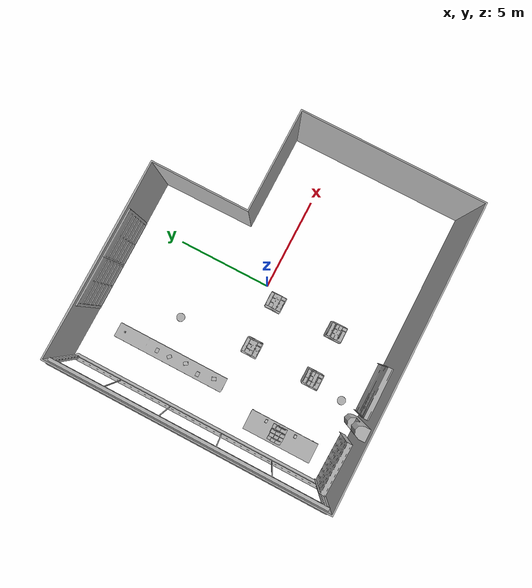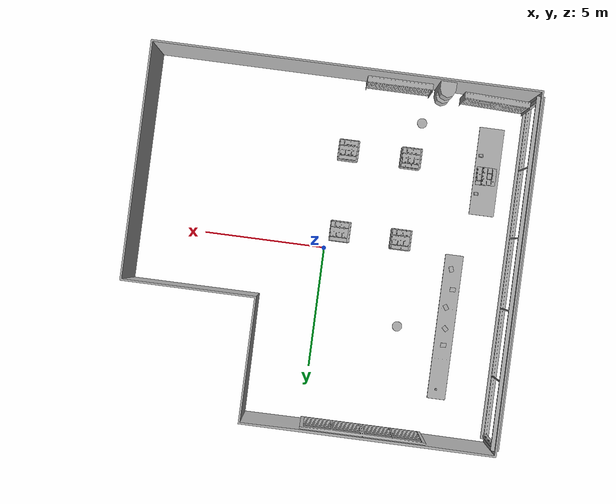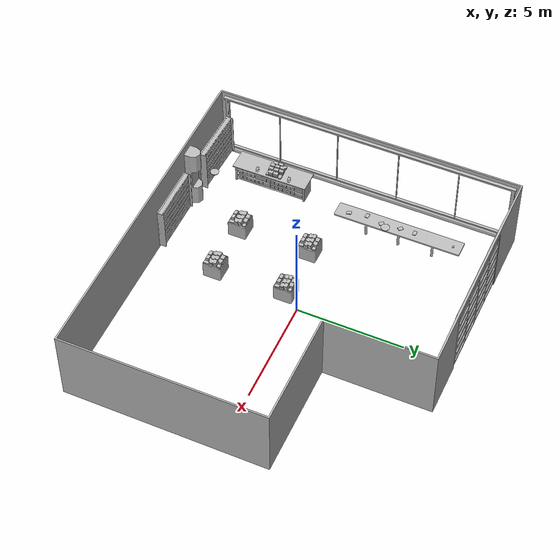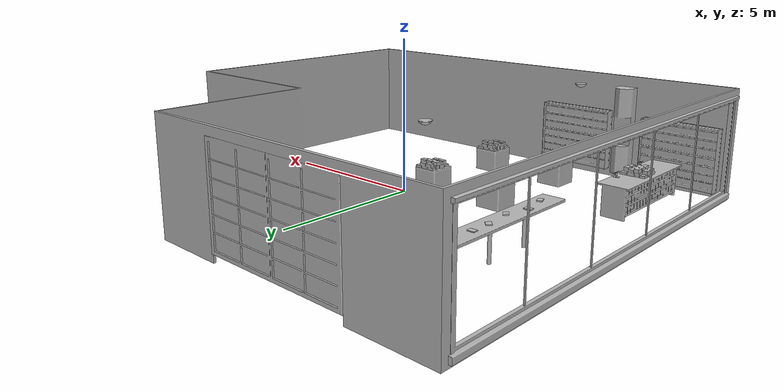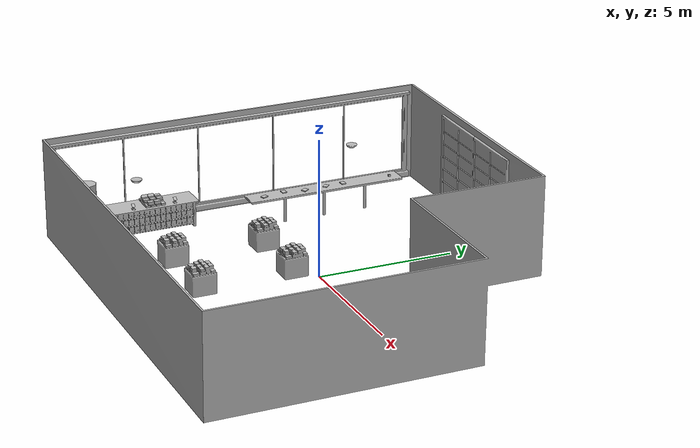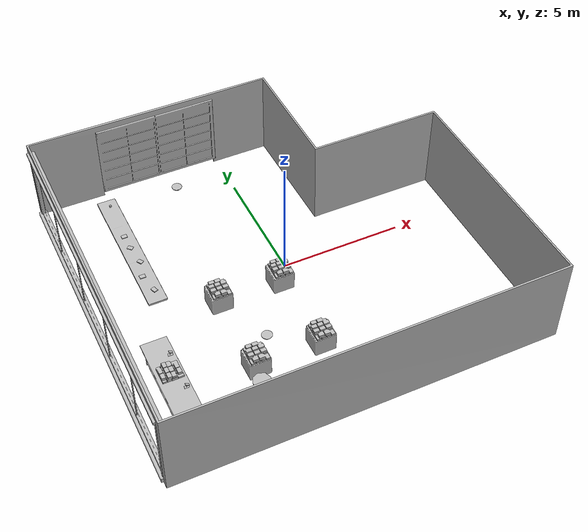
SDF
<sdf version="1.7">
 <world name="default">
  <model name="BookE_01_002">
   <pose>-5.414 3.33067 0.934015 -1e-06 -1e-06 -1.54109</pose>
   <frame name="aws_robomaker_retail_BookE_01::__model__" attached_to="aws_robomaker_retail_BookE_01::link">
    <pose relative_to="__model__">0 0 0 0 -0 0</pose>
   </frame>
   <link name="aws_robomaker_retail_BookE_01::link">
    <inertial>
     <mass>1</mass>
     <inertia><ixy>0</ixy><ixz>0</ixz><iyz>0</iyz><ixx>0.0666</ixx><iyy>0.0346</iyy><izz>0.0986</izz></inertia>
    </inertial>
    <collision name="collision">
     <geometry>
      <mesh>
       <uri>model://aws_robomaker_retail_BookE_01/meshes/aws_BookE_01_collision.DAE</uri>
       <scale>1 1 1</scale>
      </mesh>
     </geometry>
    </collision>
    <visual name="visual">
     <geometry>
      <mesh><uri>model://aws_robomaker_retail_BookE_01/meshes/aws_BookE_01_visual.DAE</uri></mesh>
     </geometry>
    </visual>
    <pose relative_to="aws_robomaker_retail_BookE_01::__model__">0 0 0 0 -0 0</pose>
   </link>
   <static>1</static>
  </model>
  <model name="BookE_01_008">
   <pose>-5.31512 1.77195 0.955242 3.14124 -0.072268 -2.52691</pose>
   <frame name="aws_robomaker_retail_BookE_01::__model__" attached_to="aws_robomaker_retail_BookE_01::link">
    <pose relative_to="__model__">0 0 0 0 -0 0</pose>
   </frame>
   <link name="aws_robomaker_retail_BookE_01::link">
    <inertial>
     <mass>1</mass>
     <inertia><ixy>0</ixy><ixz>0</ixz><iyz>0</iyz><ixx>0.0666</ixx><iyy>0.0346</iyy><izz>0.0986</izz></inertia>
    </inertial>
    <collision name="collision">
     <geometry>
      <mesh>
       <uri>model://aws_robomaker_retail_BookE_01/meshes/aws_BookE_01_collision.DAE</uri>
       <scale>1 1 1</scale>
      </mesh>
     </geometry>
    </collision>
    <visual name="visual">
     <geometry>
      <mesh><uri>model://aws_robomaker_retail_BookE_01/meshes/aws_BookE_01_visual.DAE</uri></mesh>
     </geometry>
    </visual>
    <pose relative_to="aws_robomaker_retail_BookE_01::__model__">0 0 0 0 -0 0</pose>
   </link>
   <static>1</static>
  </model>
  <model name="BookE_01_010">
   <pose>-5.50342 1.01206 0.941463 0 0 -1.56844</pose>
   <frame name="aws_robomaker_retail_BookE_01::__model__" attached_to="aws_robomaker_retail_BookE_01::link">
    <pose relative_to="__model__">0 0 0 0 -0 0</pose>
   </frame>
   <link name="aws_robomaker_retail_BookE_01::link">
    <inertial>
     <mass>1</mass>
     <inertia><ixy>0</ixy><ixz>0</ixz><iyz>0</iyz><ixx>0.0666</ixx><iyy>0.0346</iyy><izz>0.0986</izz></inertia>
    </inertial>
    <collision name="collision">
     <geometry>
      <mesh>
       <uri>model://aws_robomaker_retail_BookE_01/meshes/aws_BookE_01_collision.DAE</uri>
       <scale>1 1 1</scale>
      </mesh>
     </geometry>
    </collision>
    <visual name="visual">
     <geometry>
      <mesh><uri>model://aws_robomaker_retail_BookE_01/meshes/aws_BookE_01_visual.DAE</uri></mesh>
     </geometry>
    </visual>
    <pose relative_to="aws_robomaker_retail_BookE_01::__model__">0 0 0 0 -0 0</pose>
   </link>
   <static>1</static>
  </model>
  <model name="BookE_01_012">
   <pose>-5.33358 0.186186 0.949316 -1e-06 -0.004549 -2.79848</pose>
   <frame name="aws_robomaker_retail_BookE_01::__model__" attached_to="aws_robomaker_retail_BookE_01::link">
    <pose relative_to="__model__">0 0 0 0 -0 0</pose>
   </frame>
   <link name="aws_robomaker_retail_BookE_01::link">
    <inertial>
     <mass>1</mass>
     <inertia><ixy>0</ixy><ixz>0</ixz><iyz>0</iyz><ixx>0.0666</ixx><iyy>0.0346</iyy><izz>0.0986</izz></inertia>
    </inertial>
    <collision name="collision">
     <geometry>
      <mesh>
       <uri>model://aws_robomaker_retail_BookE_01/meshes/aws_BookE_01_collision.DAE</uri>
       <scale>1 1 1</scale>
      </mesh>
     </geometry>
    </collision>
    <visual name="visual">
     <geometry>
      <mesh><uri>model://aws_robomaker_retail_BookE_01/meshes/aws_BookE_01_visual.DAE</uri></mesh>
     </geometry>
    </visual>
    <pose relative_to="aws_robomaker_retail_BookE_01::__model__">0 0 0 0 -0 0</pose>
   </link>
   <static>1</static>
  </model>
  <model name="BookE_01_013">
   <pose>-5.40391 2.65088 0.931119 0.021204 -1e-06 -2.35575</pose>
   <frame name="aws_robomaker_retail_BookE_01::__model__" attached_to="aws_robomaker_retail_BookE_01::link">
    <pose relative_to="__model__">0 0 0 0 -0 0</pose>
   </frame>
   <link name="aws_robomaker_retail_BookE_01::link">
    <inertial>
     <mass>1</mass>
     <inertia><ixy>0</ixy><ixz>0</ixz><iyz>0</iyz><ixx>0.0666</ixx><iyy>0.0346</iyy><izz>0.0986</izz></inertia>
    </inertial>
    <collision name="collision">
     <geometry>
      <mesh>
       <uri>model://aws_robomaker_retail_BookE_01/meshes/aws_BookE_01_collision.DAE</uri>
       <scale>1 1 1</scale>
      </mesh>
     </geometry>
    </collision>
    <visual name="visual">
     <geometry>
      <mesh><uri>model://aws_robomaker_retail_BookE_01/meshes/aws_BookE_01_visual.DAE</uri></mesh>
     </geometry>
    </visual>
    <pose relative_to="aws_robomaker_retail_BookE_01::__model__">0 0 0 0 -0 0</pose>
   </link>
   <static>1</static>
  </model>
  <model name="BookD_01_002">
   <pose>-3.10814 -0.752307 0.804482 0 0 -4e-06</pose>
   <frame name="aws_robomaker_retail_BookD_01::__model__" attached_to="aws_robomaker_retail_BookD_01::link">
    <pose relative_to="__model__">0 0 0 0 -0 0</pose>
   </frame>
   <link name="aws_robomaker_retail_BookD_01::link">
    <inertial><mass>0.5</mass></inertial>
    <collision name="collision">
     <geometry>
      <mesh>
       <uri>model://aws_robomaker_retail_BookD_01/meshes/aws_BookD_01_collision.DAE</uri>
       <scale>1 1 1</scale>
      </mesh>
     </geometry>
    </collision>
    <visual name="visual">
     <geometry>
      <mesh><uri>model://aws_robomaker_retail_BookD_01/meshes/aws_BookD_01_visual.DAE</uri></mesh>
     </geometry>
    </visual>
    <pose relative_to="aws_robomaker_retail_BookD_01::__model__">0 0 0 0 -0 0</pose>
   </link>
   <static>1</static>
  </model>
  <model name="BookF_01_003">
   <pose>-3.09206 -4.15479 0.804485 4e-06 -0 0</pose>
   <frame name="aws_robomaker_retail_BookF_01::__model__" attached_to="aws_robomaker_retail_BookF_01::link">
    <pose relative_to="__model__">0 0 0 0 -0 0</pose>
   </frame>
   <link name="aws_robomaker_retail_BookF_01::link">
    <inertial>
     <mass>10</mass>
     <inertia>
      <ixx>0.583817</ixx>
      <ixy>0</ixy>
      <ixz>0</ixz>
      <iyy>0.502925</iyy>
      <iyz>0</iyz>
      <izz>0.99304</izz>
     </inertia>
    </inertial>
    <collision name="collision">
     <geometry>
      <mesh>
       <uri>model://aws_robomaker_retail_BookF_01/meshes/aws_BookF_01_collision.DAE</uri>
       <scale>1 1 1</scale>
      </mesh>
     </geometry>
    </collision>
    <visual name="visual">
     <geometry>
      <mesh><uri>model://aws_robomaker_retail_BookF_01/meshes/aws_BookF_01_visual.DAE</uri></mesh>
     </geometry>
    </visual>
    <pose relative_to="aws_robomaker_retail_BookF_01::__model__">0 0 0 0 -0 0</pose>
   </link>
   <static>1</static>
  </model>
  <model name="BookD_01_003">
   <pose>-6.23561 -3.78518 1.03816 8e-06 -0 1.58038</pose>
   <frame name="aws_robomaker_retail_BookD_01::__model__" attached_to="aws_robomaker_retail_BookD_01::link">
    <pose relative_to="__model__">0 0 0 0 -0 0</pose>
   </frame>
   <link name="aws_robomaker_retail_BookD_01::link">
    <inertial><mass>0.5</mass></inertial>
    <collision name="collision">
     <geometry>
      <mesh>
       <uri>model://aws_robomaker_retail_BookD_01/meshes/aws_BookD_01_collision.DAE</uri>
       <scale>1 1 1</scale>
      </mesh>
     </geometry>
    </collision>
    <visual name="visual">
     <geometry>
      <mesh><uri>model://aws_robomaker_retail_BookD_01/meshes/aws_BookD_01_visual.DAE</uri></mesh>
     </geometry>
    </visual>
    <pose relative_to="aws_robomaker_retail_BookD_01::__model__">0 0 0 0 -0 0</pose>
   </link>
   <static>1</static>
  </model>
  <model name="BookshelfB_01_001">
   <pose>-6.18968 -6.78565 -0.008942 0.003533 0.000121 -0.032073</pose>
   <frame name="aws_robomaker_retail_BookshelfB_01::__model__" attached_to="aws_robomaker_retail_BookshelfB_01::link">
    <pose relative_to="__model__">0 0 0 0 -0 0</pose>
   </frame>
   <link name="aws_robomaker_retail_BookshelfB_01::link">
    <inertial>
     <mass>50</mass>
     <inertia><ixx>19.8742</ixx><ixy>0</ixy><ixz>0</ixz><iyy>49.1263</iyy><iyz>0</iyz><izz>30.2231</izz></inertia>
    </inertial>
    <collision name="collision">
     <geometry>
      <mesh>
       <uri>model://aws_robomaker_retail_BookshelfB_01/meshes/aws_BookshelfB_01_collision.DAE</uri>
       <scale>1 1 1</scale>
      </mesh>
     </geometry>
    </collision>
    <visual name="visual">
     <geometry>
      <mesh><uri>model://aws_robomaker_retail_BookshelfB_01/meshes/aws_BookshelfB_01_visual.DAE</uri></mesh>
     </geometry>
    </visual>
    <pose relative_to="aws_robomaker_retail_BookshelfB_01::__model__">0 0 0 0 -0 0</pose>
   </link>
   <static>1</static>
  </model>
  <model name="BookshelfB_01_002">
   <pose>-2.20941 -6.97146 0.017074 -0.000128 -0.000252 0.000364</pose>
   <frame name="aws_robomaker_retail_BookshelfB_01::__model__" attached_to="aws_robomaker_retail_BookshelfB_01::link">
    <pose relative_to="__model__">0 0 0 0 -0 0</pose>
   </frame>
   <link name="aws_robomaker_retail_BookshelfB_01::link">
    <inertial>
     <mass>50</mass>
     <inertia><ixx>19.8742</ixx><ixy>0</ixy><ixz>0</ixz><iyy>49.1263</iyy><iyz>0</iyz><izz>30.2231</izz></inertia>
    </inertial>
    <collision name="collision">
     <geometry>
      <mesh>
       <uri>model://aws_robomaker_retail_BookshelfB_01/meshes/aws_BookshelfB_01_collision.DAE</uri>
       <scale>1 1 1</scale>
      </mesh>
     </geometry>
    </collision>
    <visual name="visual">
     <geometry>
      <mesh><uri>model://aws_robomaker_retail_BookshelfB_01/meshes/aws_BookshelfB_01_visual.DAE</uri></mesh>
     </geometry>
    </visual>
    <pose relative_to="aws_robomaker_retail_BookshelfB_01::__model__">0 0 0 0 -0 0</pose>
   </link>
   <static>1</static>
  </model>
  <model name="BookshelfC_01_003">
   <pose>-3.12493 -0.75822 0.045908 0 -0 0</pose>
   <frame name="aws_robomaker_retail_BookshelfC_01::__model__" attached_to="aws_robomaker_retail_BookshelfC_01::link">
    <pose relative_to="__model__">0 0 0 0 -0 0</pose>
   </frame>
   <link name="aws_robomaker_retail_BookshelfC_01::link">
    <inertial>
     <mass>50</mass>
     <inertia><ixx>5.5865</ixx><ixy>0</ixy><ixz>0</ixz><iyy>5.47324</iyy><iyz>0</iyz><izz>6.23277</izz></inertia>
    </inertial>
    <collision name="collision">
     <geometry>
      <mesh>
       <uri>model://aws_robomaker_retail_BookshelfC_01/meshes/aws_BookshelfC_01_collision.DAE</uri>
       <scale>1 1 1</scale>
      </mesh>
     </geometry>
    </collision>
    <visual name="visual">
     <geometry>
      <mesh><uri>model://aws_robomaker_retail_BookshelfC_01/meshes/aws_BookshelfC_01_visual.DAE</uri></mesh>
     </geometry>
    </visual>
    <pose relative_to="aws_robomaker_retail_BookshelfC_01::__model__">0 0 0 0 -0 0</pose>
   </link>
   <static>1</static>
  </model>
  <model name="BookshelfC_01_004">
   <pose>-3.10886 -4.16701 0.045908 0 -0 0</pose>
   <frame name="aws_robomaker_retail_BookshelfC_01::__model__" attached_to="aws_robomaker_retail_BookshelfC_01::link">
    <pose relative_to="__model__">0 0 0 0 -0 0</pose>
   </frame>
   <link name="aws_robomaker_retail_BookshelfC_01::link">
    <inertial>
     <mass>50</mass>
     <inertia><ixx>5.5865</ixx><ixy>0</ixy><ixz>0</ixz><iyy>5.47324</iyy><iyz>0</iyz><izz>6.23277</izz></inertia>
    </inertial>
    <collision name="collision">
     <geometry>
      <mesh>
       <uri>model://aws_robomaker_retail_BookshelfC_01/meshes/aws_BookshelfC_01_collision.DAE</uri>
       <scale>1 1 1</scale>
      </mesh>
     </geometry>
    </collision>
    <visual name="visual">
     <geometry>
      <mesh><uri>model://aws_robomaker_retail_BookshelfC_01/meshes/aws_BookshelfC_01_visual.DAE</uri></mesh>
     </geometry>
    </visual>
    <pose relative_to="aws_robomaker_retail_BookshelfC_01::__model__">0 0 0 0 -0 0</pose>
   </link>
   <static>1</static>
  </model>
  <model name="ColumnB_01_002">
   <pose>-4.07623 -6.86071 0.017511 0.001895 -0.000628 -0.003755</pose>
   <frame name="aws_robomaker_retail_ColumnB_01::__model__" attached_to="aws_robomaker_retail_ColumnB_01::link">
    <pose relative_to="__model__">0 0 0 0 -0 0</pose>
   </frame>
   <link name="aws_robomaker_retail_ColumnB_01::link">
    <inertial>
     <mass>50</mass>
     <inertia><ixx>44.5597</ixx><ixy>0</ixy><ixz>0</ixz><iyy>44.5597</iyy><iyz>0</iyz><izz>1.87942</izz></inertia>
    </inertial>
    <collision name="collision">
     <geometry>
      <mesh>
       <uri>model://aws_robomaker_retail_ColumnB_01/meshes/aws_ColumnB_01_collision.DAE</uri>
       <scale>1 1 1</scale>
      </mesh>
     </geometry>
    </collision>
    <visual name="visual">
     <geometry>
      <mesh><uri>model://aws_robomaker_retail_ColumnB_01/meshes/aws_ColumnB_01_visual.DAE</uri></mesh>
     </geometry>
    </visual>
    <pose relative_to="aws_robomaker_retail_ColumnB_01::__model__">0 0 0 0 -0 0</pose>
   </link>
   <static>1</static>
  </model>
  <model name="DeskB_01_002">
   <pose>-5.40071 2.58054 -0.181282 0 -0 0</pose>
   <frame name="aws_robomaker_retail_DeskB_01::__model__" attached_to="aws_robomaker_retail_DeskB_01::link">
    <pose relative_to="__model__">0 0 0 0 -0 0</pose>
   </frame>
   <link name="aws_robomaker_retail_DeskB_01::link">
    <inertial>
     <mass>50</mass>
     <inertia><ixx>154.884</ixx><ixy>0</ixy><ixz>0</ixz><iyy>7.48424</iyy><iyz>0</iyz><izz>152.099</izz></inertia>
    </inertial>
    <collision name="collision">
     <geometry>
      <mesh>
       <uri>model://aws_robomaker_retail_DeskB_01/meshes/aws_DeskB_01_collision.DAE</uri>
       <scale>1 1 1</scale>
      </mesh>
     </geometry>
    </collision>
    <visual name="visual">
     <geometry>
      <mesh><uri>model://aws_robomaker_retail_DeskB_01/meshes/aws_DeskB_01_visual.DAE</uri></mesh>
     </geometry>
    </visual>
    <pose relative_to="aws_robomaker_retail_DeskB_01::__model__">0 0 0 0 -0 0</pose>
   </link>
   <static>1</static>
  </model>
  <model name="DeskA_01_003">
   <pose>-6.25465 -3.9792 -0.004603 0.001948 0.001361 -1.56957</pose>
   <frame name="aws_robomaker_retail_DeskA_01::__model__" attached_to="aws_robomaker_retail_DeskA_01::link">
    <pose relative_to="__model__">0 0 0 0 -0 0</pose>
   </frame>
   <link name="aws_robomaker_retail_DeskA_01::link">
    <inertial>
     <mass>20</mass>
     <inertia><ixx>3.49717</ixx><ixy>0</ixy><ixz>0</ixz><iyy>23.5599</iyy><iyz>0</iyz><izz>23.5702</izz></inertia>
    </inertial>
    <collision name="collision">
     <geometry>
      <mesh>
       <uri>model://aws_robomaker_retail_DeskA_01/meshes/aws_DeskA_01_collision.DAE</uri>
       <scale>1 1 1</scale>
      </mesh>
     </geometry>
    </collision>
    <visual name="visual">
     <geometry>
      <mesh><uri>model://aws_robomaker_retail_DeskA_01/meshes/aws_DeskA_01_visual.DAE</uri></mesh>
     </geometry>
    </visual>
    <pose relative_to="aws_robomaker_retail_DeskA_01::__model__">0 0 0 0 -0 0</pose>
   </link>
   <static>1</static>
  </model>
  <model name="DoorB_01_001">
   <pose>-2.49246 7.21937 -0.035203 0 -0 0</pose>
   <frame name="aws_robomaker_retail_DoorB_01::__model__" attached_to="aws_robomaker_retail_DoorB_01::link">
    <pose relative_to="__model__">0 0 0 0 -0 0</pose>
   </frame>
   <link name="aws_robomaker_retail_DoorB_01::link">
    <inertial>
     <mass>50</mass>
     <inertia><ixx>44.5597</ixx><ixy>0</ixy><ixz>0</ixz><iyy>151.699</iyy><iyz>0</iyz><izz>107.806</izz></inertia>
    </inertial>
    <collision name="collision">
     <geometry>
      <mesh>
       <uri>model://aws_robomaker_retail_DoorB_01/meshes/aws_DoorB_01_collision.DAE</uri>
       <scale>1 1 1</scale>
      </mesh>
     </geometry>
    </collision>
    <visual name="visual">
     <geometry>
      <mesh><uri>model://aws_robomaker_retail_DoorB_01/meshes/aws_DoorB_01_visual.DAE</uri></mesh>
     </geometry>
    </visual>
    <pose relative_to="aws_robomaker_retail_DoorB_01::__model__">0 0 0 0 -0 0</pose>
   </link>
   <static>1</static>
  </model>
  <model name="TabletB_01_011">
   <pose>-5.91505 -3.03174 1.18472 0.518384 0.023341 1.56451</pose>
   <frame name="aws_robomaker_retail_TabletB_01::__model__" attached_to="aws_robomaker_retail_TabletB_01::link">
    <pose relative_to="__model__">0 0 0 0 -0 0</pose>
   </frame>
   <link name="aws_robomaker_retail_TabletB_01::link">
    <inertial>
     <mass>0.161</mass>
     <inertia>
      <ixx>0.346954</ixx>
      <ixy>0</ixy>
      <ixz>0</ixz>
      <iyy>0.177288</iyy>
      <iyz>0</iyz>
      <izz>0.521826</izz>
     </inertia>
    </inertial>
    <collision name="collision">
     <geometry>
      <mesh>
       <uri>model://aws_robomaker_retail_TabletB_01/meshes/aws_TabletB_01_collision.DAE</uri>
       <scale>1 1 1</scale>
      </mesh>
     </geometry>
    </collision>
    <visual name="visual">
     <geometry>
      <mesh><uri>model://aws_robomaker_retail_TabletB_01/meshes/aws_TabletB_01_visual.DAE</uri></mesh>
     </geometry>
    </visual>
    <pose relative_to="aws_robomaker_retail_TabletB_01::__model__">0 0 0 0 -0 0</pose>
   </link>
   <static>1</static>
  </model>
  <model name="TabletB_01_012">
   <pose>-5.91505 -4.6124 1.18472 0.518384 0.023341 1.56451</pose>
   <frame name="aws_robomaker_retail_TabletB_01::__model__" attached_to="aws_robomaker_retail_TabletB_01::link">
    <pose relative_to="__model__">0 0 0 0 -0 0</pose>
   </frame>
   <link name="aws_robomaker_retail_TabletB_01::link">
    <inertial>
     <mass>0.161</mass>
     <inertia>
      <ixx>0.346954</ixx>
      <ixy>0</ixy>
      <ixz>0</ixz>
      <iyy>0.177288</iyy>
      <iyz>0</iyz>
      <izz>0.521826</izz>
     </inertia>
    </inertial>
    <collision name="collision">
     <geometry>
      <mesh>
       <uri>model://aws_robomaker_retail_TabletB_01/meshes/aws_TabletB_01_collision.DAE</uri>
       <scale>1 1 1</scale>
      </mesh>
     </geometry>
    </collision>
    <visual name="visual">
     <geometry>
      <mesh><uri>model://aws_robomaker_retail_TabletB_01/meshes/aws_TabletB_01_visual.DAE</uri></mesh>
     </geometry>
    </visual>
    <pose relative_to="aws_robomaker_retail_TabletB_01::__model__">0 0 0 0 -0 0</pose>
   </link>
   <static>1</static>
  </model>
  <model name="Holder_01_019">
   <pose>-5.92911 -3.03279 1.03776 0 -0 1.55</pose>
   <frame name="aws_robomaker_retail_Holder_01::__model__" attached_to="aws_robomaker_retail_Holder_01::link">
    <pose relative_to="__model__">0 0 0 0 -0 0</pose>
   </frame>
   <link name="aws_robomaker_retail_Holder_01::link">
    <inertial><mass>1</mass></inertial>
    <collision name="collision">
     <geometry>
      <mesh>
       <uri>model://aws_robomaker_retail_Holder_01/meshes/aws_Holder_01_collision.DAE</uri>
       <scale>1 1 1</scale>
      </mesh>
     </geometry>
    </collision>
    <visual name="visual">
     <geometry>
      <mesh><uri>model://aws_robomaker_retail_Holder_01/meshes/aws_Holder_01_visual.DAE</uri></mesh>
     </geometry>
    </visual>
    <pose relative_to="aws_robomaker_retail_Holder_01::__model__">0 0 0 0 -0 0</pose>
   </link>
   <static>1</static>
  </model>
  <model name="Holder_01_020">
   <pose>-5.92911 -4.60364 1.03776 0 -0 1.55</pose>
   <frame name="aws_robomaker_retail_Holder_01::__model__" attached_to="aws_robomaker_retail_Holder_01::link">
    <pose relative_to="__model__">0 0 0 0 -0 0</pose>
   </frame>
   <link name="aws_robomaker_retail_Holder_01::link">
    <inertial><mass>1</mass></inertial>
    <collision name="collision">
     <geometry>
      <mesh>
       <uri>model://aws_robomaker_retail_Holder_01/meshes/aws_Holder_01_collision.DAE</uri>
       <scale>1 1 1</scale>
      </mesh>
     </geometry>
    </collision>
    <visual name="visual">
     <geometry>
      <mesh><uri>model://aws_robomaker_retail_Holder_01/meshes/aws_Holder_01_visual.DAE</uri></mesh>
     </geometry>
    </visual>
    <pose relative_to="aws_robomaker_retail_Holder_01::__model__">0 0 0 0 -0 0</pose>
   </link>
   <static>1</static>
  </model>
  <model name="RetailShopWall_01_001">
   <pose>0 0 -0.281282 0 -0 0</pose>
   <frame name="aws_robomaker_retail_RetailShopWall_01::__model__" attached_to="aws_robomaker_retail_RetailShopWall_01::link">
    <pose relative_to="__model__">0 0 0 0 -0 0</pose>
   </frame>
   <link name="aws_robomaker_retail_RetailShopWall_01::link">
    <inertial><mass>1</mass></inertial>
    <collision name="collision">
     <geometry>
      <mesh>
       <uri>model://aws_robomaker_retail_RetailShopWall_01/meshes/aws_RetailShopWall_01_collision.DAE</uri>
       <scale>1 1 1</scale>
      </mesh>
     </geometry>
    </collision>
    <visual name="visual">
     <geometry>
      <mesh><uri>model://aws_robomaker_retail_RetailShopWall_01/meshes/aws_RetailShopWall_01_visual.DAE</uri></mesh>
     </geometry>
    </visual>
    <pose relative_to="aws_robomaker_retail_RetailShopWall_01::__model__">0 0 0 0 -0 0</pose>
   </link>
   <static>1</static>
  </model>
  <model name="LightA_01_004">
   <pose>-3.21067 -5.38371 3.15033 0 -0 0</pose>
   <frame name="aws_robomaker_retail_LightA_01::__model__" attached_to="aws_robomaker_retail_LightA_01::link">
    <pose relative_to="__model__">0 0 0 0 -0 0</pose>
   </frame>
   <link name="aws_robomaker_retail_LightA_01::link">
    <inertial><mass>1</mass></inertial>
    <collision name="collision">
     <geometry>
      <mesh>
       <uri>model://aws_robomaker_retail_LightA_01/meshes/aws_LightA_01_collision.DAE</uri>
       <scale>1 1 1</scale>
      </mesh>
     </geometry>
    </collision>
    <visual name="visual">
     <geometry>
      <mesh><uri>model://aws_robomaker_retail_LightA_01/meshes/aws_LightA_01_visual.DAE</uri></mesh>
     </geometry>
    </visual>
    <pose relative_to="aws_robomaker_retail_LightA_01::__model__">0 0 0 0 -0 0</pose>
   </link>
   <static>1</static>
  </model>
  <model name="LightA_01_005">
   <pose>-3.271 2.68593 3.15033 0 -0 0</pose>
   <frame name="aws_robomaker_retail_LightA_01::__model__" attached_to="aws_robomaker_retail_LightA_01::link">
    <pose relative_to="__model__">0 0 0 0 -0 0</pose>
   </frame>
   <link name="aws_robomaker_retail_LightA_01::link">
    <inertial><mass>1</mass></inertial>
    <collision name="collision">
     <geometry>
      <mesh>
       <uri>model://aws_robomaker_retail_LightA_01/meshes/aws_LightA_01_collision.DAE</uri>
       <scale>1 1 1</scale>
      </mesh>
     </geometry>
    </collision>
    <visual name="visual">
     <geometry>
      <mesh><uri>model://aws_robomaker_retail_LightA_01/meshes/aws_LightA_01_visual.DAE</uri></mesh>
     </geometry>
    </visual>
    <pose relative_to="aws_robomaker_retail_LightA_01::__model__">0 0 0 0 -0 0</pose>
   </link>
   <static>1</static>
  </model>
  <model name="MagicCube_01_002">
   <pose>-5.34656 5.1781 0.928725 0 -2e-06 -1.55541</pose>
   <frame name="aws_robomaker_retail_MagicCube_01::__model__" attached_to="aws_robomaker_retail_MagicCube_01::link">
    <pose relative_to="__model__">0 0 0 0 -0 0</pose>
   </frame>
   <link name="aws_robomaker_retail_MagicCube_01::link">
    <inertial>
     <mass>0.2</mass>
     <inertia><ixx>0.01</ixx><ixy>0</ixy><ixz>0</ixz><iyy>0.01</iyy><iyz>0</iyz><izz>0.01</izz></inertia>
    </inertial>
    <collision name="collision">
     <geometry>
      <mesh>
       <uri>model://aws_robomaker_retail_MagicCube_01/meshes/aws_MagicCube_01_collision.DAE</uri>
       <scale>1 1 1</scale>
      </mesh>
     </geometry>
    </collision>
    <visual name="visual">
     <geometry>
      <mesh><uri>model://aws_robomaker_retail_MagicCube_01/meshes/aws_MagicCube_01_visual.DAE</uri></mesh>
     </geometry>
    </visual>
    <pose relative_to="aws_robomaker_retail_MagicCube_01::__model__">0 0 0 0 -0 0</pose>
   </link>
  </model>
  <model name="ShopWindow_01_001">
   <pose>-7.73816 0.01596 -0.180092 0 -0 0</pose>
   <frame name="aws_robomaker_retail_ShopWindow_01::__model__" attached_to="aws_robomaker_retail_ShopWindow_01::link">
    <pose relative_to="__model__">0 0 0 0 -0 0</pose>
   </frame>
   <link name="aws_robomaker_retail_ShopWindow_01::link">
    <inertial><mass>1</mass></inertial>
    <collision name="collision">
     <geometry>
      <mesh>
       <uri>model://aws_robomaker_retail_ShopWindow_01/meshes/aws_ShopWindow_01_collision.DAE</uri>
       <scale>1 1 1</scale>
      </mesh>
     </geometry>
    </collision>
    <visual name="visual">
     <geometry>
      <mesh><uri>model://aws_robomaker_retail_ShopWindow_01/meshes/aws_ShopWindow_01_visual.DAE</uri></mesh>
     </geometry>
    </visual>
    <pose relative_to="aws_robomaker_retail_ShopWindow_01::__model__">0 0 0 0 -0 0</pose>
   </link>
   <static>1</static>
  </model>
  <model name="BookF_01_003_clone">
   <pose>-0.488288 -4.15674 0.804485 4e-06 -0 0</pose>
   <frame name="aws_robomaker_retail_BookF_01::__model__" attached_to="aws_robomaker_retail_BookF_01::link">
    <pose relative_to="__model__">0 0 0 0 -0 0</pose>
   </frame>
   <link name="aws_robomaker_retail_BookF_01::link">
    <inertial>
     <mass>10</mass>
     <inertia>
      <ixx>0.583817</ixx>
      <ixy>0</ixy>
      <ixz>0</ixz>
      <iyy>0.502925</iyy>
      <iyz>0</iyz>
      <izz>0.99304</izz>
     </inertia>
    </inertial>
    <collision name="collision">
     <geometry>
      <mesh>
       <uri>model://aws_robomaker_retail_BookF_01/meshes/aws_BookF_01_collision.DAE</uri>
       <scale>1 1 1</scale>
      </mesh>
     </geometry>
    </collision>
    <visual name="visual">
     <geometry>
      <mesh><uri>model://aws_robomaker_retail_BookF_01/meshes/aws_BookF_01_visual.DAE</uri></mesh>
     </geometry>
    </visual>
    <pose relative_to="aws_robomaker_retail_BookF_01::__model__">0 0 0 0 -0 0</pose>
   </link>
   <static>1</static>
  </model>
  <model name="BookshelfC_01_003_clone">
   <pose>-0.49802 -4.15664 0.045908 0 -0 0</pose>
   <frame name="aws_robomaker_retail_BookshelfC_01::__model__" attached_to="aws_robomaker_retail_BookshelfC_01::link">
    <pose relative_to="__model__">0 0 0 0 -0 0</pose>
   </frame>
   <link name="aws_robomaker_retail_BookshelfC_01::link">
    <inertial>
     <mass>50</mass>
     <inertia><ixx>5.5865</ixx><ixy>0</ixy><ixz>0</ixz><iyy>5.47324</iyy><iyz>0</iyz><izz>6.23277</izz></inertia>
    </inertial>
    <collision name="collision">
     <geometry>
      <mesh>
       <uri>model://aws_robomaker_retail_BookshelfC_01/meshes/aws_BookshelfC_01_collision.DAE</uri>
       <scale>1 1 1</scale>
      </mesh>
     </geometry>
    </collision>
    <visual name="visual">
     <geometry>
      <mesh><uri>model://aws_robomaker_retail_BookshelfC_01/meshes/aws_BookshelfC_01_visual.DAE</uri></mesh>
     </geometry>
    </visual>
    <pose relative_to="aws_robomaker_retail_BookshelfC_01::__model__">0 0 0 0 -0 0</pose>
   </link>
   <static>1</static>
  </model>
  <model name="BookD_01_002_clone">
   <pose>-0.545968 -0.759332 0.804482 0 0 -4e-06</pose>
   <frame name="aws_robomaker_retail_BookD_01::__model__" attached_to="aws_robomaker_retail_BookD_01::link">
    <pose relative_to="__model__">0 0 0 0 -0 0</pose>
   </frame>
   <link name="aws_robomaker_retail_BookD_01::link">
    <inertial><mass>0.5</mass></inertial>
    <collision name="collision">
     <geometry>
      <mesh>
       <uri>model://aws_robomaker_retail_BookD_01/meshes/aws_BookD_01_collision.DAE</uri>
       <scale>1 1 1</scale>
      </mesh>
     </geometry>
    </collision>
    <visual name="visual">
     <geometry>
      <mesh><uri>model://aws_robomaker_retail_BookD_01/meshes/aws_BookD_01_visual.DAE</uri></mesh>
     </geometry>
    </visual>
    <pose relative_to="aws_robomaker_retail_BookD_01::__model__">0 0 0 0 -0 0</pose>
   </link>
   <static>1</static>
  </model>
  <model name="BookshelfC_01_003_clone_0">
   <pose>-0.578668 -0.772776 0.045908 0 -0 0</pose>
   <frame name="aws_robomaker_retail_BookshelfC_01::__model__" attached_to="aws_robomaker_retail_BookshelfC_01::link">
    <pose relative_to="__model__">0 0 0 0 -0 0</pose>
   </frame>
   <link name="aws_robomaker_retail_BookshelfC_01::link">
    <inertial>
     <mass>50</mass>
     <inertia><ixx>5.5865</ixx><ixy>0</ixy><ixz>0</ixz><iyy>5.47324</iyy><iyz>0</iyz><izz>6.23277</izz></inertia>
    </inertial>
    <collision name="collision">
     <geometry>
      <mesh>
       <uri>model://aws_robomaker_retail_BookshelfC_01/meshes/aws_BookshelfC_01_collision.DAE</uri>
       <scale>1 1 1</scale>
      </mesh>
     </geometry>
    </collision>
    <visual name="visual">
     <geometry>
      <mesh><uri>model://aws_robomaker_retail_BookshelfC_01/meshes/aws_BookshelfC_01_visual.DAE</uri></mesh>
     </geometry>
    </visual>
    <pose relative_to="aws_robomaker_retail_BookshelfC_01::__model__">0 0 0 0 -0 0</pose>
   </link>
   <static>1</static>
  </model>
 </world>
</sdf>
